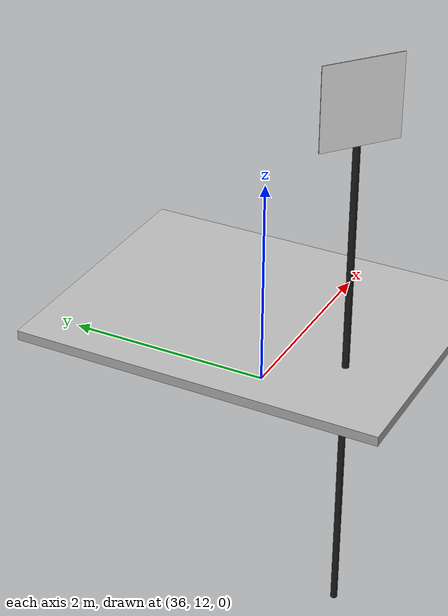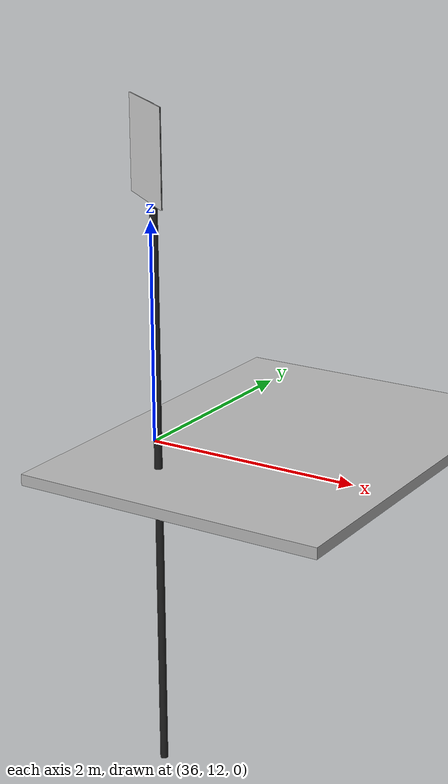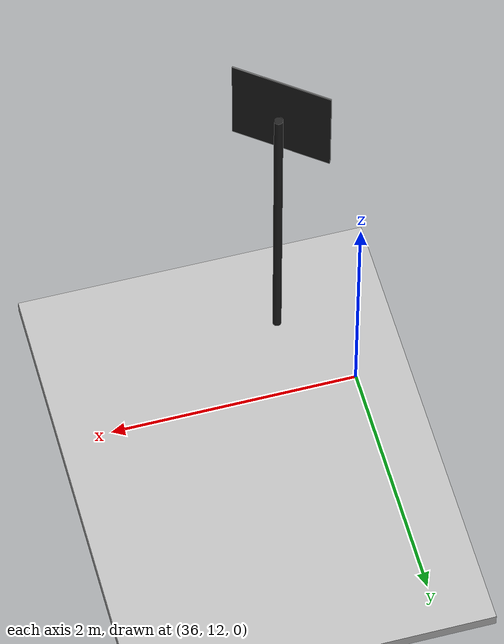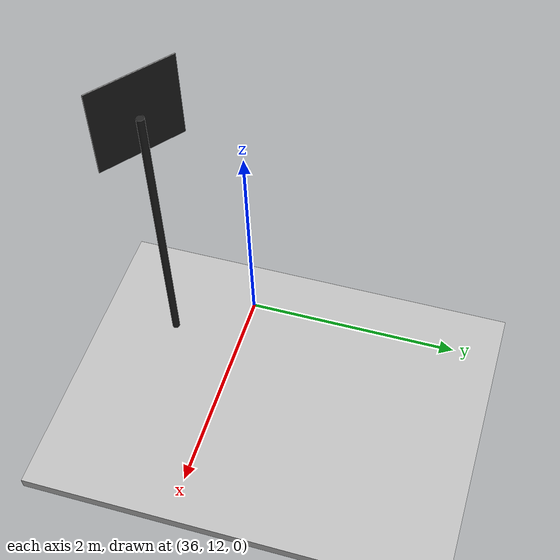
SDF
<sdf version="1.7">
 <world name="default">
  <model name="leftsign">
   <link name="link_3">
    <pose>0.1 0 2.75 0 -1.5707 0</pose>
    <inertial>
     <inertia><ixx>0</ixx><ixy>0</ixy><ixz>0</ixz><iyy>0</iyy><iyz>0</iyz><izz>0</izz></inertia>
     <mass>0</mass>
    </inertial>
    <visual name="visual">
     <pose>0 0 0 0 1.5707 0</pose>
     <geometry><box><size>0.001 0.8 0.8</size></box></geometry>
     <material>
      <script><uri>file://media/materials/scripts/turn_right.material</uri><name>turn_left/material</name></script>
      <shader type="pixel"><normal_map>__default__</normal_map></shader>
      <ambient>1 1 1 1</ambient>
      <diffuse>1 1 1 1</diffuse>
      <specular>0.03 0.03 0.03 1</specular>
      <emissive>0 0 0 1</emissive>
      <lighting>0</lighting>
     </material>
    </visual>
    <collision name="collision">
     <geometry><box><size>0.001 0.8 0.8</size></box></geometry>
     <surface>
      <friction>
       <ode><mu>1</mu><mu2>1</mu2><fdir1>0 0 0</fdir1><slip1>0</slip1><slip2>0</slip2></ode>
       <torsional>
        <coefficient>1</coefficient>
        <patch_radius>0</patch_radius>
        <surface_radius>0</surface_radius>
        <use_patch_radius>1</use_patch_radius>
        <ode><slip>0</slip></ode>
       </torsional>
      </friction>
      <bounce><restitution_coefficient>0</restitution_coefficient><threshold>1e+06</threshold></bounce>
      <contact>
       <collide_without_contact>0</collide_without_contact>
       <collide_without_contact_bitmask>1</collide_without_contact_bitmask>
       <collide_bitmask>1</collide_bitmask>
       <ode>
        <soft_cfm>0</soft_cfm>
        <soft_erp>0.2</soft_erp>
        <kp>1e+13</kp>
        <kd>1</kd>
        <max_vel>0.01</max_vel>
        <min_depth>0</min_depth>
       </ode>
       <bullet>
        <split_impulse>1</split_impulse>
        <split_impulse_penetration_threshold>-0.01</split_impulse_penetration_threshold>
        <soft_cfm>0</soft_cfm>
        <soft_erp>0.2</soft_erp>
        <kp>1e+13</kp>
        <kd>1</kd>
       </bullet>
      </contact>
     </surface>
    </collision>
   </link>
   <link name="link_0">
    <inertial>
     <mass>0.0276171</mass>
     <inertia>
      <ixx>0.0566012</ixx>
      <ixy>0</ixy>
      <ixz>0</ixz>
      <iyy>0.0566012</iyy>
      <iyz>0</iyz>
      <izz>1.919e-05</izz>
     </inertia>
    </inertial>
    <pose>0.16 0 0 0 -0 0</pose>
    <visual name="visual">
     <geometry><cylinder><radius>0.035</radius><length>5.5</length></cylinder></geometry>
     <material>
      <lighting>1</lighting>
      <script><uri>file://media/materials/scripts/gazebo.material</uri><name>Gazebo/Black</name></script>
      <shader type="pixel"><normal_map>__default__</normal_map></shader>
      <emissive>0 0 0 1</emissive>
      <ambient>0.3 0.3 0.3 1</ambient>
      <diffuse>0.7 0.7 0.7 1</diffuse>
      <specular>0.01 0.01 0.01 1</specular>
     </material>
    </visual>
    <collision name="collision">
     <geometry><cylinder><radius>0.037282</radius><length>4.95881</length></cylinder></geometry>
     <surface>
      <friction>
       <ode><mu>1</mu><mu2>1</mu2><fdir1>0 0 0</fdir1><slip1>0</slip1><slip2>0</slip2></ode>
       <torsional>
        <coefficient>1</coefficient>
        <patch_radius>0</patch_radius>
        <surface_radius>0</surface_radius>
        <use_patch_radius>1</use_patch_radius>
        <ode><slip>0</slip></ode>
       </torsional>
      </friction>
      <bounce><restitution_coefficient>0</restitution_coefficient><threshold>1e+06</threshold></bounce>
      <contact>
       <collide_without_contact>0</collide_without_contact>
       <collide_without_contact_bitmask>1</collide_without_contact_bitmask>
       <collide_bitmask>1</collide_bitmask>
       <ode>
        <soft_cfm>0</soft_cfm>
        <soft_erp>0.2</soft_erp>
        <kp>1e+13</kp>
        <kd>1</kd>
        <max_vel>0.01</max_vel>
        <min_depth>0</min_depth>
       </ode>
       <bullet>
        <split_impulse>1</split_impulse>
        <split_impulse_penetration_threshold>-0.01</split_impulse_penetration_threshold>
        <soft_cfm>0</soft_cfm>
        <soft_erp>0.2</soft_erp>
        <kp>1e+13</kp>
        <kd>1</kd>
       </bullet>
      </contact>
     </surface>
    </collision>
   </link>
   <link name="link_3_clone">
    <pose>0.110001 0 2.75 0 -1.5707 0</pose>
    <inertial>
     <inertia><ixx>0</ixx><ixy>0</ixy><ixz>0</ixz><iyy>0</iyy><iyz>0</iyz><izz>0</izz></inertia>
     <mass>0</mass>
    </inertial>
    <visual name="visual">
     <pose>0 0 0 0 1.5707 0</pose>
     <geometry><box><size>0.001 0.8 0.8</size></box></geometry>
     <material>
      <script><uri>file://media/materials/scripts/turn_right.material</uri><name>Gazebo/Black</name></script>
      <shader type="pixel"><normal_map>__default__</normal_map></shader>
      <ambient>1 1 1 1</ambient>
      <diffuse>1 1 1 1</diffuse>
      <specular>0.03 0.03 0.03 1</specular>
      <emissive>0 0 0 1</emissive>
      <lighting>0</lighting>
     </material>
    </visual>
    <collision name="collision">
     <geometry><box><size>0.001 0.8 0.8</size></box></geometry>
     <surface>
      <friction>
       <ode><mu>1</mu><mu2>1</mu2><fdir1>0 0 0</fdir1><slip1>0</slip1><slip2>0</slip2></ode>
       <torsional>
        <coefficient>1</coefficient>
        <patch_radius>0</patch_radius>
        <surface_radius>0</surface_radius>
        <use_patch_radius>1</use_patch_radius>
        <ode><slip>0</slip></ode>
       </torsional>
      </friction>
      <bounce><restitution_coefficient>0</restitution_coefficient><threshold>1e+06</threshold></bounce>
      <contact>
       <collide_without_contact>0</collide_without_contact>
       <collide_without_contact_bitmask>1</collide_without_contact_bitmask>
       <collide_bitmask>1</collide_bitmask>
       <ode>
        <soft_cfm>0</soft_cfm>
        <soft_erp>0.2</soft_erp>
        <kp>1e+13</kp>
        <kd>1</kd>
        <max_vel>0.01</max_vel>
        <min_depth>0</min_depth>
       </ode>
       <bullet>
        <split_impulse>1</split_impulse>
        <split_impulse_penetration_threshold>-0.01</split_impulse_penetration_threshold>
        <soft_cfm>0</soft_cfm>
        <soft_erp>0.2</soft_erp>
        <kp>1e+13</kp>
        <kd>1</kd>
       </bullet>
      </contact>
     </surface>
    </collision>
   </link>
   <joint name="link_0_JOINT_0" type="revolute">
    <parent>link_0</parent>
    <child>link_3</child>
    <axis>
     <xyz>1 0 0</xyz>
     <limit>
      <lower>-1.79769e+308</lower>
      <upper>1.79769e+308</upper>
      <effort>-1</effort>
      <velocity>-1</velocity>
     </limit>
     <dynamics>
      <spring_reference>0</spring_reference>
      <spring_stiffness>0</spring_stiffness>
      <damping>0</damping>
      <friction>0</friction>
     </dynamics>
    </axis>
    <physics>
     <ode><limit><cfm>0</cfm><erp>0.2</erp></limit><suspension><cfm>0</cfm><erp>0.2</erp></suspension></ode>
    </physics>
   </joint>
   <joint name="link_0_JOINT_1" type="revolute">
    <parent>link_0</parent>
    <child>link_3_clone</child>
    <axis>
     <xyz>1 0 0</xyz>
     <limit>
      <lower>-1.79769e+308</lower>
      <upper>1.79769e+308</upper>
      <effort>-1</effort>
      <velocity>-1</velocity>
     </limit>
     <dynamics>
      <spring_reference>0</spring_reference>
      <spring_stiffness>0</spring_stiffness>
      <damping>0</damping>
      <friction>0</friction>
     </dynamics>
    </axis>
    <physics>
     <ode><limit><cfm>0</cfm><erp>0.2</erp></limit><suspension><cfm>0</cfm><erp>0.2</erp></suspension></ode>
    </physics>
   </joint>
   <joint name="link_3_JOINT_0" type="revolute">
    <parent>link_3</parent>
    <child>link_3_clone</child>
    <axis>
     <xyz>1 0 0</xyz>
     <limit>
      <lower>-1.79769e+308</lower>
      <upper>1.79769e+308</upper>
      <effort>-1</effort>
      <velocity>-1</velocity>
     </limit>
     <dynamics>
      <spring_reference>0</spring_reference>
      <spring_stiffness>0</spring_stiffness>
      <damping>0</damping>
      <friction>0</friction>
     </dynamics>
    </axis>
    <physics>
     <ode><limit><cfm>0</cfm><erp>0.2</erp></limit><suspension><cfm>0</cfm><erp>0.2</erp></suspension></ode>
    </physics>
   </joint>
   <static>1</static>
   <pose>36.3789 11.2368 0 0 -0 0.912548</pose>
  </model>
  <model name="ground">
   <link name="ground">
    <inertial>
     <mass>1</mass>
     <inertia><ixx>1</ixx><ixy>0</ixy><ixz>0</ixz><iyy>1</iyy><iyz>0</iyz><izz>1</izz></inertia>
    </inertial>
    <visual name="visual">
     <geometry><box><size>56.5 45.2 0.1</size></box></geometry>
     <material>
      <script><uri>file://media/materials/scripts/map.material</uri><name>map/material</name></script>
      <shader type="pixel"><normal_map>__default__</normal_map></shader>
      <lighting>0</lighting>
     </material>
    </visual>
    <collision name="collision">
     <geometry><box><size>56.5 45.2 0.1</size></box></geometry>
     <surface>
      <friction>
       <ode><mu>1</mu><mu2>1</mu2><fdir1>0 0 0</fdir1><slip1>0</slip1><slip2>0</slip2></ode>
       <torsional>
        <coefficient>1</coefficient>
        <patch_radius>0</patch_radius>
        <surface_radius>0</surface_radius>
        <use_patch_radius>1</use_patch_radius>
        <ode><slip>0</slip></ode>
       </torsional>
      </friction>
      <bounce><restitution_coefficient>0</restitution_coefficient><threshold>1e+06</threshold></bounce>
      <contact>
       <collide_without_contact>0</collide_without_contact>
       <collide_without_contact_bitmask>1</collide_without_contact_bitmask>
       <collide_bitmask>1</collide_bitmask>
       <ode>
        <soft_cfm>0</soft_cfm>
        <soft_erp>0.2</soft_erp>
        <kp>1e+13</kp>
        <kd>1</kd>
        <max_vel>0.01</max_vel>
        <min_depth>0</min_depth>
       </ode>
       <bullet>
        <split_impulse>1</split_impulse>
        <split_impulse_penetration_threshold>-0.01</split_impulse_penetration_threshold>
        <soft_cfm>0</soft_cfm>
        <soft_erp>0.2</soft_erp>
        <kp>1e+13</kp>
        <kd>1</kd>
       </bullet>
      </contact>
     </surface>
    </collision>
   </link>
   <static>1</static>
   <pose>19 24.5 0 0 -0 1.5707</pose>
  </model>
 </world>
</sdf>
